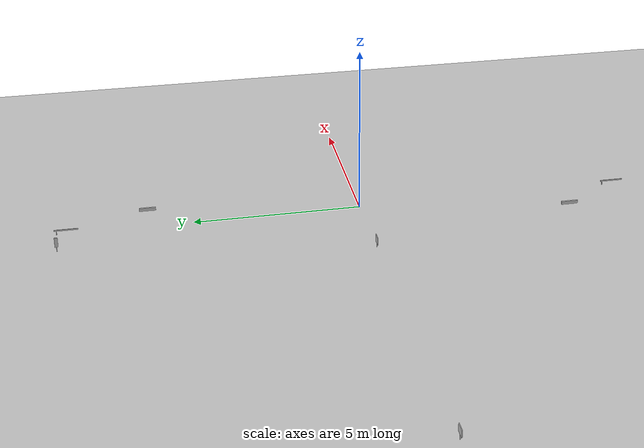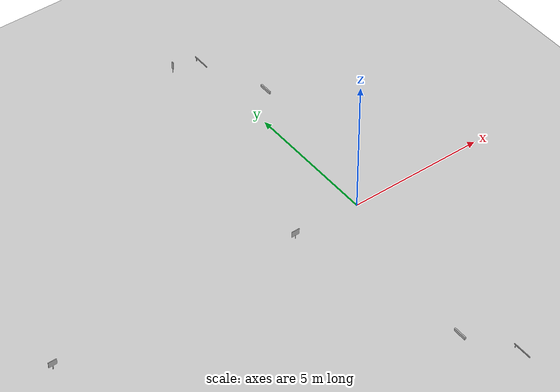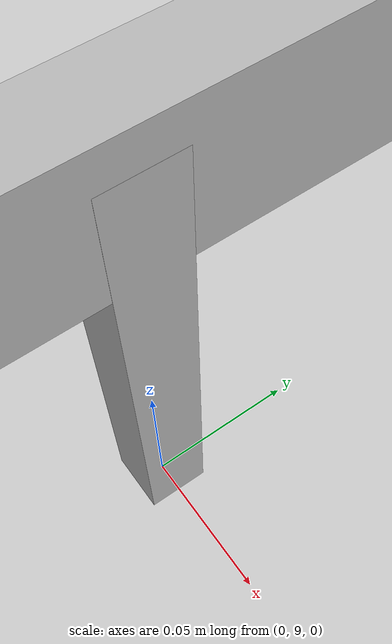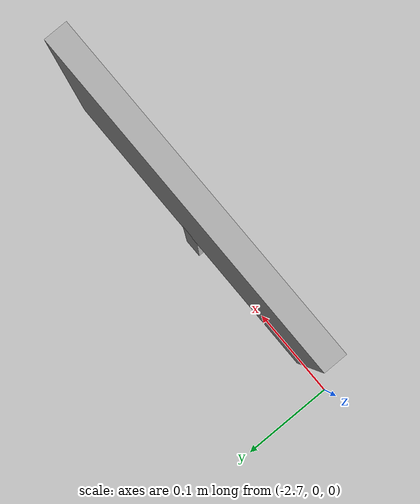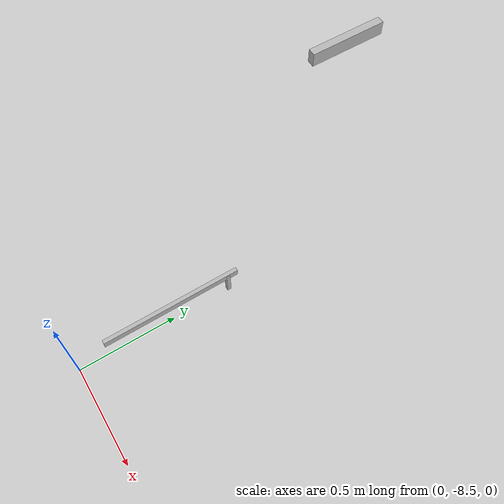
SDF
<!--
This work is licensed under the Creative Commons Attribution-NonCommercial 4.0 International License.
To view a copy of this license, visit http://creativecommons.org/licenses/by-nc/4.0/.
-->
<sdf version="1.5">
 <world name="vrc_task_1">
  <light type="directional" name="sun">
   <cast_shadows>false</cast_shadows>
   <pose>0 0 100 0 0 0</pose>
   <diffuse>0.8 0.8 0.8 1</diffuse>
   <specular>0.9 0.9 0.9 1</specular>
   <attenuation>
    <range>1000</range>
    <constant>0.9</constant>
    <linear>0.01</linear>
    <quadratic>0.001</quadratic>
   </attenuation>
   <direction>0 0 -1</direction>
  </light>
  <model name="ground_plane">
   <static>true</static>
   <link name="link">
    <collision name="collision">
     <geometry><plane><normal>0 0 1</normal><size>500 500</size></plane></geometry>
     <surface><friction><ode><mu>1</mu><mu2>1</mu2></ode></friction></surface>
    </collision>
    <visual name="course">
     <pose>0 0 0 0 0 3.142</pose>
     <cast_shadows>false</cast_shadows>
     <geometry><plane><normal>0 0 1</normal><size>25 20</size></plane></geometry>
     <material>
      <script>
       <uri>file://materials/scripts</uri>
       <uri>file://materials/textures</uri>
       <name>Cessna/Course</name>
      </script>
     </material>
    </visual>
   </link>
  </model>
  <plugin filename="libSimEventsPlugin.so" name="elevator_event_plugin">
   <region><name>first_block_right</name><volume><min>0.5 -6 0.0</min><max>-0.5 -6.5 0.1</max></volume></region>
   <region><name>second_block_right</name><volume><min>0.5 6 0.0</min><max>-0.5 6.5 0.1</max></volume></region>
   <event>
    <name>first_block_event_right</name>
    <type>occupied</type>
    <region>first_block_right</region>
    <topic>~/blockingbar</topic>
    <msg_data>1</msg_data>
   </event>
   <event>
    <name>second_block_event_right</name>
    <type>occupied</type>
    <region>second_block_right</region>
    <topic>~/blockingbar</topic>
    <msg_data>-1</msg_data>
   </event>
  </plugin>
  <model name="box_right">
   <pose>1 6.3 0.05 0 0 1.571</pose>
   <link name="box">
    <collision name="box_collision"><geometry><box><size>0.5 0.05 0.1</size></box></geometry></collision>
    <visual name="box_visual"><geometry><box><size>0.5 0.05 0.1</size></box></geometry></visual>
   </link>
  </model>
  <model name="bar_right">
   <link name="bar">
    <pose>0 9.0 0.075 0 0 01.571</pose>
    <collision name="bar_collision"><geometry><box><size>0.02 0.02 0.15</size></box></geometry></collision>
    <visual name="bar_visual"><geometry><box><size>0.02 0.02 0.15</size></box></geometry></visual>
   </link>
   <link name="blocking_bar">
    <pose>0 8.72 0.14 0 0 1.571</pose>
    <collision name="blocking_bar_collision">
     <geometry><box><size>0.7 0.02 0.04</size></box></geometry>
    </collision>
    <visual name="blocking_bar_visual">
     <geometry><box><size>0.7 0.02 0.04</size></box></geometry>
     <material><script><name>blocking</name></script></material>
    </visual>
   </link>
   <joint name="fixed" type="fixed">
    <pose>0 7.5 -0.075 0 0 0</pose>
    <parent>world</parent>
    <child>bar</child>
    <axis><xyz>0 0 0</xyz></axis>
   </joint>
   <joint name="blocking_bar_joint" type="revolute">
    <parent>bar</parent>
    <child>blocking_bar</child>
    <pose>0.25 7.3 0 0 0 0</pose>
    <axis><xyz>0 1 0</xyz><limit><lower>0</lower><upper>1.57</upper></limit></axis>
   </joint>
   <plugin name="BlockingBar" filename="/home/manros/BlockBar/build/libblocking.so"/>
  </model>
  <plugin filename="libSimEventsPlugin.so" name="elevator_event_plugin">
   <region><name>first_block_left</name><volume><min>0.5 -6 0.0</min><max>-0.5 -6.5 0.1</max></volume></region>
   <region><name>second_block_left</name><volume><min>0.5 6 0.0</min><max>-0.5 6.5 0.1</max></volume></region>
   <event>
    <name>first_block_event_left</name>
    <type>occupied</type>
    <region>first_block_left</region>
    <topic>~/blockingbar</topic>
    <msg_data>1</msg_data>
   </event>
   <event>
    <name>second_block_event_left</name>
    <type>occupied</type>
    <region>second_block_left</region>
    <topic>~/blockingbar</topic>
    <msg_data>-1</msg_data>
   </event>
  </plugin>
  <model name="box_left">
   <pose>-1 -6.3 0.05 0 0 1.571</pose>
   <link name="box">
    <collision name="box_collision"><geometry><box><size>0.5 0.05 0.1</size></box></geometry></collision>
    <visual name="box_visual"><geometry><box><size>0.5 0.05 0.1</size></box></geometry></visual>
   </link>
  </model>
  <model name="bar_left">
   <link name="bar">
    <pose>0 -7.7 0.075 0 0 1.571</pose>
    <collision name="bar_collision"><geometry><box><size>0.02 0.02 0.15</size></box></geometry></collision>
    <visual name="bar_visual"><geometry><box><size>0.02 0.02 0.15</size></box></geometry></visual>
   </link>
   <link name="blocking_bar">
    <pose>0 -8.0 0.14 0 0 1.571</pose>
    <collision name="blocking_bar_collision">
     <geometry><box><size>0.7 0.02 0.04</size></box></geometry>
    </collision>
    <visual name="blocking_bar_visual">
     <geometry><box><size>0.7 0.02 0.04</size></box></geometry>
     <material>
      <script><name>blocking</name><uri>file:///home/manros/BlockBar/image/blocking.material</uri></script>
     </material>
    </visual>
   </link>
   <joint name="fixed" type="fixed">
    <pose>0 -7.7 -0.075 0 0 1.571</pose>
    <parent>world</parent>
    <child>bar</child>
    <axis><xyz>0 0 0</xyz></axis>
   </joint>
   <joint name="blocking_bar_joint" type="revolute">
    <parent>bar</parent>
    <child>blocking_bar</child>
    <pose>0.25 -7.3 0 0 0 0</pose>
    <axis><xyz>0 1 0</xyz><limit><lower>0</lower><upper>1.57</upper></limit></axis>
   </joint>
   <plugin name="BlockingBar" filename="/home/manros/BlockBar/build/libblocking.so"/>
  </model>
  <model name="parking_bar">
   <link name="bar">
    <pose>-2.5 0 0.075 0 0 0</pose>
    <collision name="bar_collision"><geometry><box><size>0.02 0.02 0.15</size></box></geometry></collision>
    <visual name="bar_visual"><geometry><box><size>0.02 0.02 0.15</size></box></geometry></visual>
   </link>
   <link name="sign_bar">
    <pose>-2.5 0 0.25 0 0 0</pose>
    <collision name="sign_bar_collision"><geometry><box><size>0.3 0.02 0.22</size></box></geometry></collision>
    <visual name="sign_bar_visual">
     <geometry><box><size>0.3 0.02 0.22</size></box></geometry>
     <material>
      <script><name>parking</name><uri>file:///home/manros/BlockBar/image/parking.material</uri></script>
     </material>
    </visual>
   </link>
   <joint name="fixed" type="fixed">
    <pose>-2.5 0 -0.075 0 0 0</pose>
    <parent>world</parent>
    <child>bar</child>
    <axis><xyz>0 0 0</xyz></axis>
   </joint>
   <joint name="sign_bar_joint" type="revolute">
    <parent>bar</parent>
    <child>sign_bar</child>
    <pose>0.25 7.3 0 0 0 0</pose>
    <axis><xyz>0 1 0</xyz><limit><lower>0</lower><upper>1.57</upper></limit></axis>
   </joint>
  </model>
  <model name="parking_bar2">
   <link name="bar">
    <pose>-11.6 0 0.075 0 0 0</pose>
    <collision name="bar_collision"><geometry><box><size>0.02 0.02 0.15</size></box></geometry></collision>
    <visual name="bar_visual"><geometry><box><size>0.02 0.02 0.15</size></box></geometry></visual>
   </link>
   <link name="sign_bar">
    <pose>-11.6 0 0.25 0 0 0</pose>
    <collision name="sign_bar_collision"><geometry><box><size>0.3 0.02 0.22</size></box></geometry></collision>
    <visual name="sign_bar_visual">
     <geometry><box><size>0.3 0.02 0.22</size></box></geometry>
     <material>
      <script><name>parking</name><uri>file:///home/manros/BlockBar/image/parking.material</uri></script>
     </material>
    </visual>
   </link>
   <joint name="fixed" type="fixed">
    <pose>-11.6 0 -0.075 0 0 0</pose>
    <parent>world</parent>
    <child>bar</child>
    <axis><xyz>0 0 0</xyz></axis>
   </joint>
   <joint name="sign_bar_joint" type="revolute">
    <parent>bar</parent>
    <child>sign_bar</child>
    <pose>0.25 7.3 0 0 0 0</pose>
    <axis><xyz>0 1 0</xyz><limit><lower>0</lower><upper>1.57</upper></limit></axis>
   </joint>
  </model>
  <model name="traffic_bar">
   <link name="bar">
    <pose>-1 9.0 0.075 0 0 01.571</pose>
    <collision name="bar_collision"><geometry><box><size>0.02 0.02 0.15</size></box></geometry></collision>
    <visual name="bar_visual"><geometry><box><size>0.02 0.02 0.15</size></box></geometry></visual>
   </link>
   <link name="light_bar">
    <pose>-1 9.0 0.3 0 0 1.571</pose>
    <collision name="light_bar_collision"><geometry><box><size>0.1 0.02 0.3</size></box></geometry></collision>
    <visual name="light_bar_visual">
     <geometry><box><size>0.1 0.02 0.3</size></box></geometry>
     <material>
      <script><name>traffic</name><uri>file:///home/manros/BlockBar/image/traffic.material</uri></script>
     </material>
    </visual>
   </link>
   <joint name="fixed" type="fixed">
    <pose>-1 9.0 -0.075 0 0 0</pose>
    <parent>world</parent>
    <child>bar</child>
    <axis><xyz>0 0 0</xyz></axis>
   </joint>
   <joint name="light_bar_bar_joint" type="revolute">
    <parent>bar</parent>
    <child>light_bar</child>
    <pose>0.25 7.3 0 0 0 0</pose>
    <axis><xyz>0 1 0</xyz><limit><lower>0</lower><upper>1.57</upper></limit></axis>
   </joint>
  </model>
  <physics type="ode">
   <gravity>0 0 -9.81</gravity>
   <ode>
    <solver>
     <use_dynamic_moi_rescaling>true</use_dynamic_moi_rescaling>
     <type>quick</type>
     <iters>50</iters>
     <sor>1.0</sor>
    </solver>
    <constraints>
     <cfm>0.0</cfm>
     <erp>0.2</erp>
     <contact_max_correcting_vel>100.0</contact_max_correcting_vel>
     <contact_surface_layer>0.0</contact_surface_layer>
    </constraints>
   </ode>
   <real_time_update_rate>1000</real_time_update_rate>
   <max_step_size>0.001</max_step_size>
  </physics>
  <plugin name="ardupilot_sitl_gazebo_plugin_rover" filename="libardupilot_sitl_gazebo_plugin_rover.so">
   <UAV_MODEL>rover</UAV_MODEL>
  </plugin>
 </world>
</sdf>
